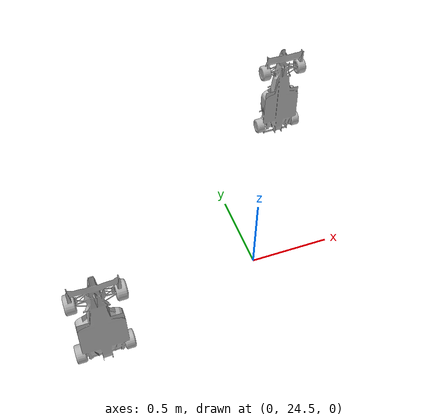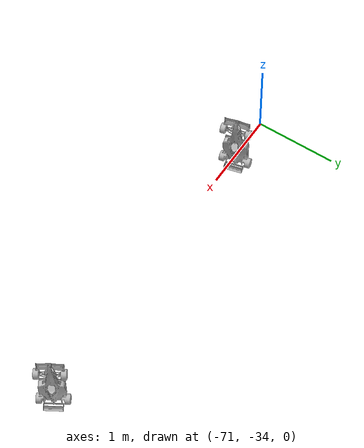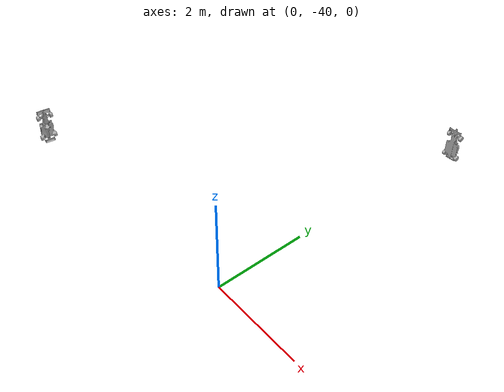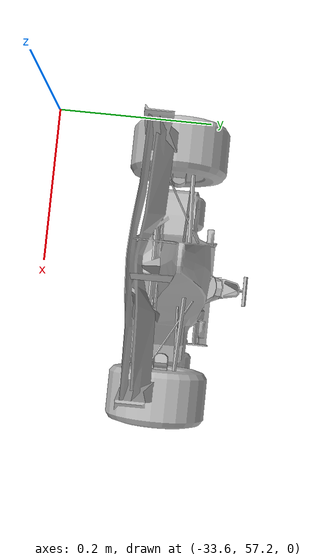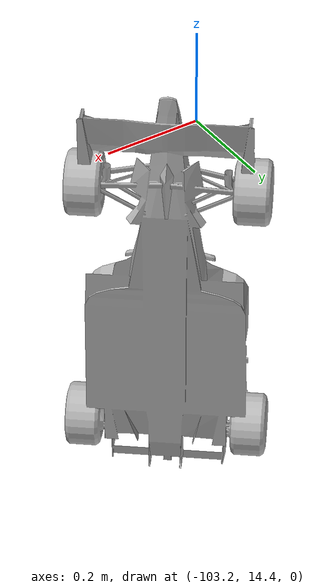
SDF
<sdf version="1.9">
 <world name="default">
  <plugin filename="gz-sim-physics-system" name="gz::sim::systems::Physics"/>
  <plugin filename="gz-sim-scene-broadcaster-system" name="gz::sim::systems::SceneBroadcaster"/>
  <plugin filename="gz-sim-user-commands-system" name="gz::sim::systems::UserCommands"/>
  <plugin filename="gz-sim-sensors-system" name="gz::sim::systems::Sensors">
   <render_engine>ogre2</render_engine>
  </plugin>
  <scene><shadows>false</shadows><grid>false</grid></scene>
  <light type="directional" name="sun">
   <pose>0 0 20 -1.3 0 0.5</pose>
   <diffuse>0.8 0.8 0.8 1</diffuse>
   <specular>0.01 0.01 0.01 1</specular>
   <intensity>2</intensity>
   <visualize>false</visualize>
  </light>
  <light type="point" name="point_light">
   <pose>0.73 0.09 8.77 0 0 0</pose>
   <diffuse>1 1 1 1</diffuse>
   <specular>.01 .01 .01 1</specular>
   <attenuation>
    <range>20</range>
    <linear>0.2</linear>
    <constant>0.8</constant>
    <quadratic>0.01</quadratic>
   </attenuation>
   <visualize>false</visualize>
  </light>
  <light type="point" name="point_light_01">
   <pose>3.482 -4.28 8.87 0 0 0</pose>
   <diffuse>1 1 1 1</diffuse>
   <specular>0.01 0.01 0.01 1</specular>
   <attenuation>
    <range>10</range>
    <linear>0.5</linear>
    <constant>0.8</constant>
    <quadratic>0.001</quadratic>
   </attenuation>
   <cast_shadows>false</cast_shadows>
   <visualize>false</visualize>
  </light>
  <light type="point" name="point_light_02">
   <pose>0.13 0.46 11.60 0 0 0</pose>
   <diffuse>1 1 1 1</diffuse>
   <specular>0.01 0.01 0.01 1</specular>
   <attenuation>
    <range>10</range>
    <linear>0.2</linear>
    <constant>0.5</constant>
    <quadratic>0.001</quadratic>
   </attenuation>
   <cast_shadows>false</cast_shadows>
   <visualize>false</visualize>
  </light>
  <light type="point" name="point_light_03">
   <pose>4.27 -1.27 11.21 0 0 0</pose>
   <diffuse>1 1 1 1</diffuse>
   <specular>0.01 0.01 0.01 1</specular>
   <attenuation>
    <range>10</range>
    <linear>0.5</linear>
    <constant>0.8</constant>
    <quadratic>0.001</quadratic>
   </attenuation>
   <cast_shadows>false</cast_shadows>
   <visualize>false</visualize>
  </light>
  <light type="point" name="point_light_04">
   <pose>-0.31 -3.78 8.61 0 0 0</pose>
   <diffuse>1 1 1 1</diffuse>
   <specular>.01 .01 .01 1</specular>
   <attenuation>
    <range>10</range>
    <linear>0.5</linear>
    <constant>0.8</constant>
    <quadratic>0.001</quadratic>
   </attenuation>
   <cast_shadows>false</cast_shadows>
   <visualize>false</visualize>
  </light>
  <model name="ground_plane">
   <static>true</static>
   <link name="link">
    <collision name="collision">
     <geometry><plane><normal>0.0 0.0 1</normal><size>1000 1000</size></plane></geometry>
    </collision>
   </link>
  </model>
  <include>
   <uri>model://f1_dummy_harmonic</uri>
   <name>f1_dummy_1</name>
   <pose>-0.1 -33 0 0 0 0</pose>
   <static>true</static>
  </include>
  <include>
   <uri>model://f1_dummy_harmonic</uri>
   <name>f1_dummy_2</name>
   <pose>-7 -40 0 0 0 -1.67</pose>
   <static>true</static>
  </include>
  <include>
   <uri>model://f1_dummy_harmonic</uri>
   <name>f1_dummy_3</name>
   <pose>-13.2 -18.8 0 0 0 -3</pose>
   <static>true</static>
  </include>
  <include>
   <uri>model://f1_dummy_harmonic</uri>
   <name>f1_dummy_4</name>
   <pose>-40 -11.5 0 0 0 -1.57</pose>
   <static>true</static>
  </include>
  <include>
   <uri>model://f1_dummy_harmonic</uri>
   <name>f1_dummy_5</name>
   <pose>-66.83 -34.15 0 0 0 -1.03</pose>
   <static>true</static>
  </include>
  <include>
   <uri>model://f1_dummy_harmonic</uri>
   <name>f1_dummy_6</name>
   <pose>-70.8 -34.2 0 0 0 -1.33</pose>
   <static>true</static>
  </include>
  <include>
   <uri>model://f1_dummy_harmonic</uri>
   <name>f1_dummy_7</name>
   <pose>-103 14.6 0 0 0 2.47</pose>
   <static>true</static>
  </include>
  <include>
   <uri>model://f1_dummy_harmonic</uri>
   <name>f1_dummy_8</name>
   <pose>-52.76 42.3 0 0 0 2.15</pose>
   <static>true</static>
  </include>
  <include>
   <uri>model://f1_dummy_harmonic</uri>
   <name>f1_dummy_9</name>
   <pose>-33.4 57.3 0 0 0 0</pose>
   <static>true</static>
  </include>
  <include>
   <uri>model://f1_dummy_harmonic</uri>
   <name>f1_dummy_10</name>
   <pose>-3.5 59 0 0 0 0.785</pose>
   <static>true</static>
  </include>
  <include>
   <uri>model://f1_dummy_harmonic</uri>
   <name>f1_dummy_11</name>
   <pose>1 26.2 0 0 0 0</pose>
   <static>true</static>
  </include>
  <include>
   <uri>model://f1_dummy_harmonic</uri>
   <name>f1_dummy_12</name>
   <pose>-1 24.5 0 0 0 0</pose>
   <static>true</static>
  </include>
 </world>
</sdf>

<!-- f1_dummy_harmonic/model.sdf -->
<sdf version="1.4">
	<model name="f1">
		<pose>
			0 0 0 0 0 0
		</pose>
		<static>
			false
		</static>
		<link name="car">
			<pose>
				0 0 0 0 0 0
			</pose>
			<collision name="collision">
				<geometry>
					<mesh>
						<uri>
							model://f1_dummy_harmonic/meshes/F1Y.stl
						</uri>
					</mesh>
				</geometry>
			</collision>
			<visual name="visual">
				<geometry>
					<mesh>
						<uri>
							model://f1_dummy_harmonic/meshes/F1Y.dae
						</uri>
					</mesh>
				</geometry>
			</visual>
		</link>
	</model>
</sdf>
